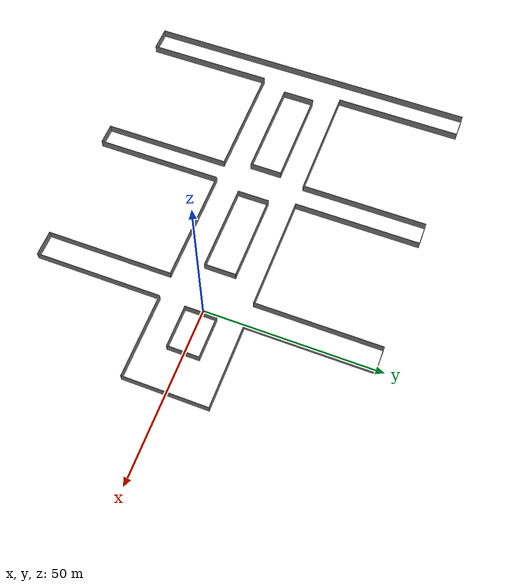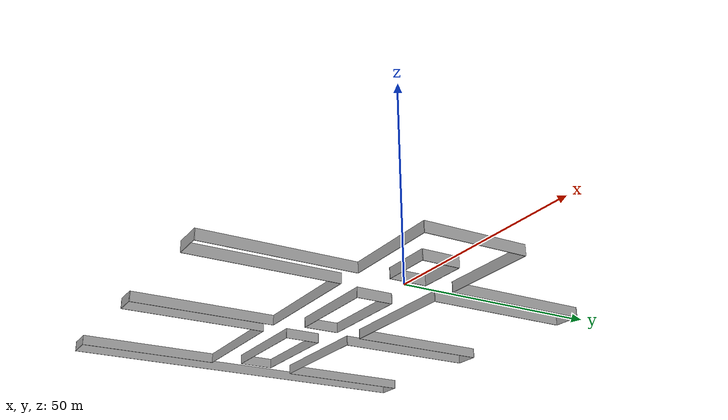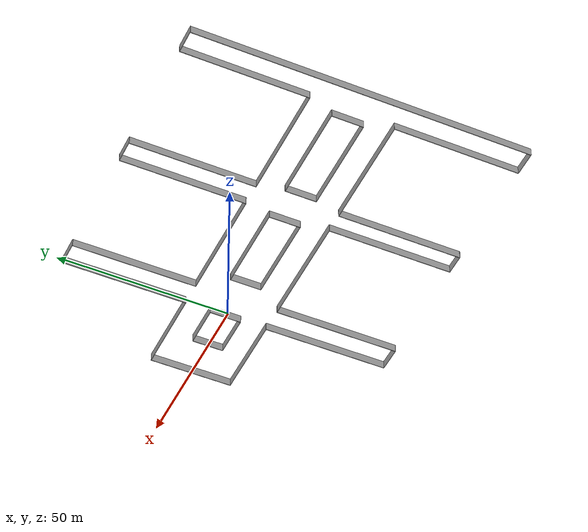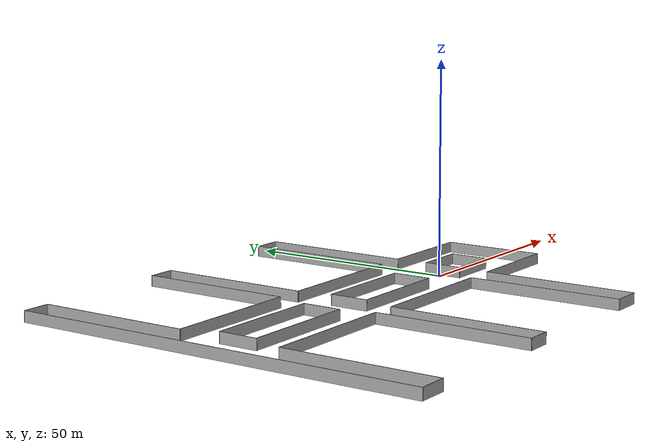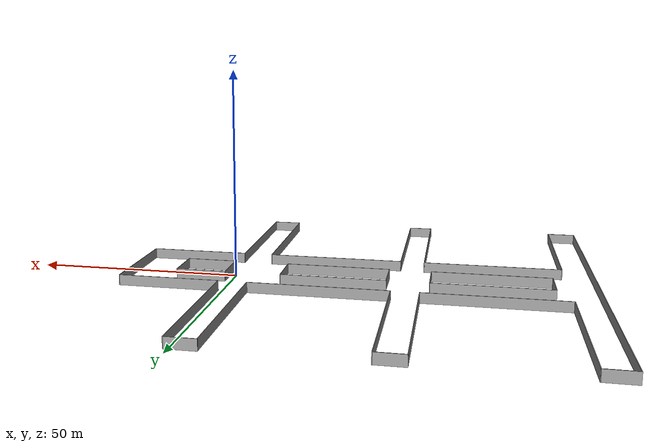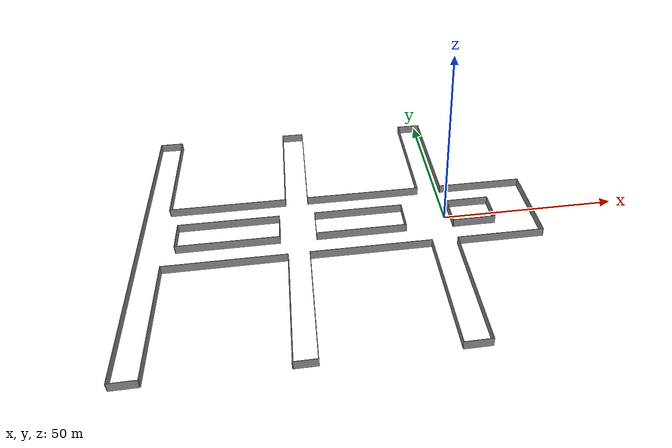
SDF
<?xml version='1.0'?>
<sdf version='1.7'>
  <model name='hospital_wall'>
    <pose>-29.7405 -0.074999 0 0 -0 0</pose>
    <link name='Wall_136'>
      <collision name='Wall_136_Collision'>
        <geometry>
          <box>
            <size>24.15 0.15 2.5</size>
          </box>
        </geometry>
        <pose>0 0 1.25 0 -0 0</pose>
      </collision>
      <visual name='Wall_136_Visual'>
        <pose>0 0 1.25 0 -0 0</pose>
        <geometry>
          <box>
            <size>24.15 0.15 2.5</size>
          </box>
        </geometry>
        <material>
          <script>
            <uri>file://media/materials/scripts/gazebo.material</uri>
            <name>Gazebo/Grey</name>
          </script>
          <ambient>1 1 1 1</ambient>
        </material>
        <meta>
          <layer>0</layer>
        </meta>
      </visual>
      <pose>54.8905 0.074999 0 0 -0 -1.5708</pose>
    </link>
    <link name='Wall_139'>
      <collision name='Wall_139_Collision'>
        <geometry>
          <box>
            <size>12.15 0.15 2.5</size>
          </box>
        </geometry>
        <pose>0 0 1.25 0 -0 0</pose>
      </collision>
      <visual name='Wall_139_Visual'>
        <pose>0 0 1.25 0 -0 0</pose>
        <geometry>
          <box>
            <size>12.15 0.15 2.5</size>
          </box>
        </geometry>
        <material>
          <script>
            <uri>file://media/materials/scripts/gazebo.material</uri>
            <name>Gazebo/Grey</name>
          </script>
          <ambient>1 1 1 1</ambient>
        </material>
        <meta>
          <layer>0</layer>
        </meta>
      </visual>
      <pose>37.2405 4.575 0 0 -0 0</pose>
    </link>
    <link name='Wall_140'>
      <collision name='Wall_140_Collision'>
        <geometry>
          <box>
            <size>9.15 0.15 2.5</size>
          </box>
        </geometry>
        <pose>0 0 1.25 0 -0 0</pose>
      </collision>
      <visual name='Wall_140_Visual'>
        <pose>0 0 1.25 0 -0 0</pose>
        <geometry>
          <box>
            <size>9.15 0.15 2.5</size>
          </box>
        </geometry>
        <material>
          <script>
            <uri>file://media/materials/scripts/gazebo.material</uri>
            <name>Gazebo/Grey</name>
          </script>
          <ambient>1 1 1 1</ambient>
        </material>
        <meta>
          <layer>0</layer>
        </meta>
      </visual>
      <pose>43.2405 0.074999 0 0 -0 -1.5708</pose>
    </link>
    <link name='Wall_141'>
      <collision name='Wall_141_Collision'>
        <geometry>
          <box>
            <size>12.165 0.15 2.5</size>
          </box>
        </geometry>
        <pose>0 0 1.25 0 -0 0</pose>
      </collision>
      <visual name='Wall_141_Visual'>
        <pose>0 0 1.25 0 -0 0</pose>
        <geometry>
          <box>
            <size>12.165 0.15 2.5</size>
          </box>
        </geometry>
        <material>
          <script>
            <uri>file://media/materials/scripts/gazebo.material</uri>
            <name>Gazebo/Grey</name>
          </script>
          <ambient>1 1 1 1</ambient>
        </material>
        <meta>
          <layer>0</layer>
        </meta>
      </visual>
      <pose>37.233 -4.425 0 0 -0 3.14159</pose>
    </link>
    <link name='Wall_142'>
      <collision name='Wall_142_Collision'>
        <geometry>
          <box>
            <size>9.15 0.15 2.5</size>
          </box>
        </geometry>
        <pose>0 0 1.25 0 -0 0</pose>
      </collision>
      <visual name='Wall_142_Visual'>
        <pose>0 0 1.25 0 -0 0</pose>
        <geometry>
          <box>
            <size>9.15 0.15 2.5</size>
          </box>
        </geometry>
        <material>
          <script>
            <uri>file://media/materials/scripts/gazebo.material</uri>
            <name>Gazebo/Grey</name>
          </script>
          <ambient>1 1 1 1</ambient>
        </material>
        <meta>
          <layer>0</layer>
        </meta>
      </visual>
      <pose>31.2255 0.074999 0 0 -0 1.5708</pose>
    </link>
    <link name='Wall_147'>
      <collision name='Wall_147_Collision'>
        <geometry>
          <box>
            <size>36 0.15 2.5</size>
          </box>
        </geometry>
        <pose>0 0 1.25 0 -0 0</pose>
      </collision>
      <visual name='Wall_147_Visual'>
        <pose>0 0 1.25 0 -0 0</pose>
        <geometry>
          <box>
            <size>36 0.15 2.5</size>
          </box>
        </geometry>
        <material>
          <script>
            <uri>file://media/materials/scripts/gazebo.material</uri>
            <name>Gazebo/Grey</name>
          </script>
          <ambient>1 1 1 1</ambient>
        </material>
        <meta>
          <layer>0</layer>
        </meta>
      </visual>
      <pose>23.5905 -29.85 0 0 -0 1.5708</pose>
    </link>
    <link name='Wall_149'>
      <collision name='Wall_149_Collision'>
        <geometry>
          <box>
            <size>36 0.15 2.5</size>
          </box>
        </geometry>
        <pose>0 0 1.25 0 -0 0</pose>
      </collision>
      <visual name='Wall_149_Visual'>
        <pose>0 0 1.25 0 -0 0</pose>
        <geometry>
          <box>
            <size>36 0.15 2.5</size>
          </box>
        </geometry>
        <material>
          <script>
            <uri>file://media/materials/scripts/gazebo.material</uri>
            <name>Gazebo/Grey</name>
          </script>
          <ambient>1 1 1 1</ambient>
        </material>
        <meta>
          <layer>0</layer>
        </meta>
      </visual>
      <pose>30.7405 30 0 0 -0 1.5708</pose>
    </link>
    <link name='Wall_150'>
      <collision name='Wall_150_Collision'>
        <geometry>
          <box>
            <size>7 0.15 2.5</size>
          </box>
        </geometry>
        <pose>0 0 1.25 0 -0 0</pose>
      </collision>
      <visual name='Wall_150_Visual'>
        <pose>0 0 1.25 0 -0 0</pose>
        <geometry>
          <box>
            <size>7 0.15 2.5</size>
          </box>
        </geometry>
        <material>
          <script>
            <uri>file://media/materials/scripts/gazebo.material</uri>
            <name>Gazebo/Grey</name>
          </script>
          <ambient>1 1 1 1</ambient>
        </material>
        <meta>
          <layer>0</layer>
        </meta>
      </visual>
      <pose>27.3155 47.925 0 0 -0 3.14159</pose>
    </link>
    <link name='Wall_151'>
      <collision name='Wall_151_Collision'>
        <geometry>
          <box>
            <size>36 0.15 2.5</size>
          </box>
        </geometry>
        <pose>0 0 1.25 0 -0 0</pose>
      </collision>
      <visual name='Wall_151_Visual'>
        <pose>0 0 1.25 0 -0 0</pose>
        <geometry>
          <box>
            <size>36 0.15 2.5</size>
          </box>
        </geometry>
        <material>
          <script>
            <uri>file://media/materials/scripts/gazebo.material</uri>
            <name>Gazebo/Grey</name>
          </script>
          <ambient>1 1 1 1</ambient>
        </material>
        <meta>
          <layer>0</layer>
        </meta>
      </visual>
      <pose>23.8905 30 0 0 -0 -1.5708</pose>
    </link>
    <link name='Wall_157'>
      <collision name='Wall_157_Collision'>
        <geometry>
          <box>
            <size>36 0.15 2.5</size>
          </box>
        </geometry>
        <pose>0 0 1.25 0 -0 0</pose>
      </collision>
      <visual name='Wall_157_Visual'>
        <pose>0 0 1.25 0 -0 0</pose>
        <geometry>
          <box>
            <size>36 0.15 2.5</size>
          </box>
        </geometry>
        <material>
          <script>
            <uri>file://media/materials/scripts/gazebo.material</uri>
            <name>Gazebo/Grey</name>
          </script>
          <ambient>1 1 1 1</ambient>
        </material>
        <meta>
          <layer>0</layer>
        </meta>
      </visual>
      <pose>-8.9595 30 0 0 -0 1.5708</pose>
    </link>
    <link name='Wall_158'>
      <collision name='Wall_158_Collision'>
        <geometry>
          <box>
            <size>6.596 0.15 2.5</size>
          </box>
        </geometry>
        <pose>0 0 1.25 0 -0 0</pose>
      </collision>
      <visual name='Wall_158_Visual'>
        <pose>0 0 1.25 0 -0 0</pose>
        <geometry>
          <box>
            <size>6.596 0.15 2.5</size>
          </box>
        </geometry>
        <material>
          <script>
            <uri>file://media/materials/scripts/gazebo.material</uri>
            <name>Gazebo/Grey</name>
          </script>
          <ambient>1 1 1 1</ambient>
        </material>
        <meta>
          <layer>0</layer>
        </meta>
      </visual>
      <pose>-12.1825 47.925 0 0 -0 3.14159</pose>
    </link>
    <link name='Wall_159'>
      <collision name='Wall_159_Collision'>
        <geometry>
          <box>
            <size>36 0.15 2.5</size>
          </box>
        </geometry>
        <pose>0 0 1.25 0 -0 0</pose>
      </collision>
      <visual name='Wall_159_Visual'>
        <pose>0 0 1.25 0 -0 0</pose>
        <geometry>
          <box>
            <size>36 0.15 2.5</size>
          </box>
        </geometry>
        <material>
          <script>
            <uri>file://media/materials/scripts/gazebo.material</uri>
            <name>Gazebo/Grey</name>
          </script>
          <ambient>1 1 1 1</ambient>
        </material>
        <meta>
          <layer>0</layer>
        </meta>
      </visual>
      <pose>-15.4055 30 0 0 -0 -1.5708</pose>
    </link>
    <link name='Wall_160'>
      <collision name='Wall_160_Collision'>
        <geometry>
          <box>
            <size>33 0.15 2.5</size>
          </box>
        </geometry>
        <pose>0 0 1.25 0 -0 0</pose>
      </collision>
      <visual name='Wall_160_Visual'>
        <pose>0 0 1.25 0 -0 0</pose>
        <geometry>
          <box>
            <size>33 0.15 2.5</size>
          </box>
        </geometry>
        <material>
          <script>
            <uri>file://media/materials/scripts/gazebo.material</uri>
            <name>Gazebo/Grey</name>
          </script>
          <ambient>1 1 1 1</ambient>
        </material>
        <meta>
          <layer>0</layer>
        </meta>
      </visual>
      <pose>-31.8305 12.075 0 0 -0 3.14159</pose>
    </link>
    <link name='Wall_161'>
      <collision name='Wall_161_Collision'>
        <geometry>
          <box>
            <size>36 0.15 2.5</size>
          </box>
        </geometry>
        <pose>0 0 1.25 0 -0 0</pose>
      </collision>
      <visual name='Wall_161_Visual'>
        <pose>0 0 1.25 0 -0 0</pose>
        <geometry>
          <box>
            <size>36 0.15 2.5</size>
          </box>
        </geometry>
        <material>
          <script>
            <uri>file://media/materials/scripts/gazebo.material</uri>
            <name>Gazebo/Grey</name>
          </script>
          <ambient>1 1 1 1</ambient>
        </material>
        <meta>
          <layer>0</layer>
        </meta>
      </visual>
      <pose>-48.2555 30 0 0 -0 1.5708</pose>
    </link>
    <link name='Wall_162'>
      <collision name='Wall_162_Collision'>
        <geometry>
          <box>
            <size>6.785 0.15 2.5</size>
          </box>
        </geometry>
        <pose>0 0 1.25 0 -0 0</pose>
      </collision>
      <visual name='Wall_162_Visual'>
        <pose>0 0 1.25 0 -0 0</pose>
        <geometry>
          <box>
            <size>6.785 0.15 2.5</size>
          </box>
        </geometry>
        <material>
          <script>
            <uri>file://media/materials/scripts/gazebo.material</uri>
            <name>Gazebo/Grey</name>
          </script>
          <ambient>1 1 1 1</ambient>
        </material>
        <meta>
          <layer>0</layer>
        </meta>
      </visual>
      <pose>-51.573 47.925 0 0 -0 3.14159</pose>
    </link>
    <link name='Wall_163'>
      <collision name='Wall_163_Collision'>
        <geometry>
          <box>
            <size>95.85 0.15 2.5</size>
          </box>
        </geometry>
        <pose>0 0 1.25 0 -0 0</pose>
      </collision>
      <visual name='Wall_163_Visual'>
        <pose>0 0 1.25 0 -0 0</pose>
        <geometry>
          <box>
            <size>95.85 0.15 2.5</size>
          </box>
        </geometry>
        <material>
          <script>
            <uri>file://media/materials/scripts/gazebo.material</uri>
            <name>Gazebo/Grey</name>
          </script>
          <ambient>1 1 1 1</ambient>
        </material>
        <meta>
          <layer>0</layer>
        </meta>
      </visual>
      <pose>-54.8905 0.074999 0 0 -0 -1.5708</pose>
    </link>
    <link name='Wall_164'>
      <collision name='Wall_164_Collision'>
        <geometry>
          <box>
            <size>7 0.15 2.5</size>
          </box>
        </geometry>
        <pose>0 0 1.25 0 -0 0</pose>
      </collision>
      <visual name='Wall_164_Visual'>
        <pose>0 0 1.25 0 -0 0</pose>
        <geometry>
          <box>
            <size>7 0.15 2.5</size>
          </box>
        </geometry>
        <material>
          <script>
            <uri>file://media/materials/scripts/gazebo.material</uri>
            <name>Gazebo/Grey</name>
          </script>
          <ambient>1 1 1 1</ambient>
        </material>
        <meta>
          <layer>0</layer>
        </meta>
      </visual>
      <pose>-51.4655 -47.775 0 0 -0 0</pose>
    </link>
    <link name='Wall_165'>
      <collision name='Wall_165_Collision'>
        <geometry>
          <box>
            <size>36 0.15 2.5</size>
          </box>
        </geometry>
        <pose>0 0 1.25 0 -0 0</pose>
      </collision>
      <visual name='Wall_165_Visual'>
        <pose>0 0 1.25 0 -0 0</pose>
        <geometry>
          <box>
            <size>36 0.15 2.5</size>
          </box>
        </geometry>
        <material>
          <script>
            <uri>file://media/materials/scripts/gazebo.material</uri>
            <name>Gazebo/Grey</name>
          </script>
          <ambient>1 1 1 1</ambient>
        </material>
        <meta>
          <layer>0</layer>
        </meta>
      </visual>
      <pose>-48.0405 -29.85 0 0 -0 1.5708</pose>
    </link>
    <link name='Wall_166'>
      <collision name='Wall_166_Collision'>
        <geometry>
          <box>
            <size>33 0.15 2.5</size>
          </box>
        </geometry>
        <pose>0 0 1.25 0 -0 0</pose>
      </collision>
      <visual name='Wall_166_Visual'>
        <pose>0 0 1.25 0 -0 0</pose>
        <geometry>
          <box>
            <size>33 0.15 2.5</size>
          </box>
        </geometry>
        <material>
          <script>
            <uri>file://media/materials/scripts/gazebo.material</uri>
            <name>Gazebo/Grey</name>
          </script>
          <ambient>1 1 1 1</ambient>
        </material>
        <meta>
          <layer>0</layer>
        </meta>
      </visual>
      <pose>-31.6155 -11.925 0 0 -0 0</pose>
    </link>
    <link name='Wall_170'>
      <collision name='Wall_170_Collision'>
        <geometry>
          <box>
            <size>33 0.15 2.5</size>
          </box>
        </geometry>
        <pose>0 0 1.25 0 -0 0</pose>
      </collision>
      <visual name='Wall_170_Visual'>
        <pose>0 0 1.25 0 -0 0</pose>
        <geometry>
          <box>
            <size>33 0.15 2.5</size>
          </box>
        </geometry>
        <material>
          <script>
            <uri>file://media/materials/scripts/gazebo.material</uri>
            <name>Gazebo/Grey</name>
          </script>
          <ambient>1 1 1 1</ambient>
        </material>
        <meta>
          <layer>0</layer>
        </meta>
      </visual>
      <pose>7.4655 12.075 0 0 -0 3.14159</pose>
    </link>
    <link name='Wall_172'>
      <collision name='Wall_172_Collision'>
        <geometry>
          <box>
            <size>33 0.15 2.5</size>
          </box>
        </geometry>
        <pose>0 0 1.25 0 -0 0</pose>
      </collision>
      <visual name='Wall_172_Visual'>
        <pose>0 0 1.25 0 -0 0</pose>
        <geometry>
          <box>
            <size>33 0.15 2.5</size>
          </box>
        </geometry>
        <material>
          <script>
            <uri>file://media/materials/scripts/gazebo.material</uri>
            <name>Gazebo/Grey</name>
          </script>
          <ambient>1 1 1 1</ambient>
        </material>
        <meta>
          <layer>0</layer>
        </meta>
      </visual>
      <pose>7.0155 -11.925 0 0 -0 0</pose>
    </link>
    <link name='Wall_174'>
      <collision name='Wall_174_Collision'>
        <geometry>
          <box>
            <size>24 0.15 2.5</size>
          </box>
        </geometry>
        <pose>0 0 1.25 0 -0 0</pose>
      </collision>
      <visual name='Wall_174_Visual'>
        <pose>0 0 1.25 0 -0 0</pose>
        <geometry>
          <box>
            <size>24 0.15 2.5</size>
          </box>
        </geometry>
        <material>
          <script>
            <uri>file://media/materials/scripts/gazebo.material</uri>
            <name>Gazebo/Grey</name>
          </script>
          <ambient>1 1 1 1</ambient>
        </material>
        <meta>
          <layer>0</layer>
        </meta>
      </visual>
      <pose>42.8155 -11.925 0 0 -0 0</pose>
    </link>
    <link name='Wall_176'>
      <collision name='Wall_176_Collision'>
        <geometry>
          <box>
            <size>9.15 0.15 2.5</size>
          </box>
        </geometry>
        <pose>0 0 1.25 0 -0 0</pose>
      </collision>
      <visual name='Wall_176_Visual'>
        <pose>0 0 1.25 0 -0 0</pose>
        <geometry>
          <box>
            <size>9.15 0.15 2.5</size>
          </box>
        </geometry>
        <material>
          <script>
            <uri>file://media/materials/scripts/gazebo.material</uri>
            <name>Gazebo/Grey</name>
          </script>
          <ambient>1 1 1 1</ambient>
        </material>
        <meta>
          <layer>0</layer>
        </meta>
      </visual>
      <pose>-7.2595 0.074999 0 0 -0 -1.5708</pose>
    </link>
    <link name='Wall_177'>
      <collision name='Wall_177_Collision'>
        <geometry>
          <box>
            <size>25.15 0.15 2.5</size>
          </box>
        </geometry>
        <pose>0 0 1.25 0 -0 0</pose>
      </collision>
      <visual name='Wall_177_Visual'>
        <pose>0 0 1.25 0 -0 0</pose>
        <geometry>
          <box>
            <size>25.15 0.15 2.5</size>
          </box>
        </geometry>
        <material>
          <script>
            <uri>file://media/materials/scripts/gazebo.material</uri>
            <name>Gazebo/Grey</name>
          </script>
          <ambient>1 1 1 1</ambient>
        </material>
        <meta>
          <layer>0</layer>
        </meta>
      </visual>
      <pose>5.2405 -4.425 0 0 -0 0</pose>
    </link>
    <link name='Wall_178'>
      <collision name='Wall_178_Collision'>
        <geometry>
          <box>
            <size>9.15 0.15 2.5</size>
          </box>
        </geometry>
        <pose>0 0 1.25 0 -0 0</pose>
      </collision>
      <visual name='Wall_178_Visual'>
        <pose>0 0 1.25 0 -0 0</pose>
        <geometry>
          <box>
            <size>9.15 0.15 2.5</size>
          </box>
        </geometry>
        <material>
          <script>
            <uri>file://media/materials/scripts/gazebo.material</uri>
            <name>Gazebo/Grey</name>
          </script>
          <ambient>1 1 1 1</ambient>
        </material>
        <meta>
          <layer>0</layer>
        </meta>
      </visual>
      <pose>17.7405 0.074999 0 0 -0 1.5708</pose>
    </link>
    <link name='Wall_179'>
      <collision name='Wall_179_Collision'>
        <geometry>
          <box>
            <size>25.15 0.15 2.5</size>
          </box>
        </geometry>
        <pose>0 0 1.25 0 -0 0</pose>
      </collision>
      <visual name='Wall_179_Visual'>
        <pose>0 0 1.25 0 -0 0</pose>
        <geometry>
          <box>
            <size>25.15 0.15 2.5</size>
          </box>
        </geometry>
        <material>
          <script>
            <uri>file://media/materials/scripts/gazebo.material</uri>
            <name>Gazebo/Grey</name>
          </script>
          <ambient>1 1 1 1</ambient>
        </material>
        <meta>
          <layer>0</layer>
        </meta>
      </visual>
      <pose>5.2405 4.575 0 0 -0 3.14159</pose>
    </link>
    <link name='Wall_181'>
      <collision name='Wall_181_Collision'>
        <geometry>
          <box>
            <size>36 0.15 2.5</size>
          </box>
        </geometry>
        <pose>0 0 1.25 0 -0 0</pose>
      </collision>
      <visual name='Wall_181_Visual'>
        <pose>0 0 1.25 0 -0 0</pose>
        <geometry>
          <box>
            <size>36 0.15 2.5</size>
          </box>
        </geometry>
        <material>
          <script>
            <uri>file://media/materials/scripts/gazebo.material</uri>
            <name>Gazebo/Grey</name>
          </script>
          <ambient>1 1 1 1</ambient>
        </material>
        <meta>
          <layer>0</layer>
        </meta>
      </visual>
      <pose>-15.1905 -29.85 0 0 -0 -1.5708</pose>
    </link>
    <link name='Wall_184'>
      <collision name='Wall_184_Collision'>
        <geometry>
          <box>
            <size>24 0.15 2.5</size>
          </box>
        </geometry>
        <pose>0 0 1.25 0 -0 0</pose>
      </collision>
      <visual name='Wall_184_Visual'>
        <pose>0 0 1.25 0 -0 0</pose>
        <geometry>
          <box>
            <size>24 0.15 2.5</size>
          </box>
        </geometry>
        <material>
          <script>
            <uri>file://media/materials/scripts/gazebo.material</uri>
            <name>Gazebo/Grey</name>
          </script>
          <ambient>1 1 1 1</ambient>
        </material>
        <meta>
          <layer>0</layer>
        </meta>
      </visual>
      <pose>42.8155 12.075 0 0 -0 0</pose>
    </link>
    <link name='Wall_186'>
      <collision name='Wall_186_Collision'>
        <geometry>
          <box>
            <size>36 0.15 2.5</size>
          </box>
        </geometry>
        <pose>0 0 1.25 0 -0 0</pose>
      </collision>
      <visual name='Wall_186_Visual'>
        <pose>0 0 1.25 0 -0 0</pose>
        <geometry>
          <box>
            <size>36 0.15 2.5</size>
          </box>
        </geometry>
        <material>
          <script>
            <uri>file://media/materials/scripts/gazebo.material</uri>
            <name>Gazebo/Grey</name>
          </script>
          <ambient>1 1 1 1</ambient>
        </material>
        <meta>
          <layer>0</layer>
        </meta>
      </visual>
      <pose>30.7405 -29.85 0 0 -0 -1.5708</pose>
    </link>
    <link name='Wall_188'>
      <collision name='Wall_188_Collision'>
        <geometry>
          <box>
            <size>7.3 0.15 2.5</size>
          </box>
        </geometry>
        <pose>0 0 1.25 0 -0 0</pose>
      </collision>
      <visual name='Wall_188_Visual'>
        <pose>0 0 1.25 0 -0 0</pose>
        <geometry>
          <box>
            <size>7.3 0.15 2.5</size>
          </box>
        </geometry>
        <material>
          <script>
            <uri>file://media/materials/scripts/gazebo.material</uri>
            <name>Gazebo/Grey</name>
          </script>
          <ambient>1 1 1 1</ambient>
        </material>
        <meta>
          <layer>0</layer>
        </meta>
      </visual>
      <pose>27.1655 -47.925 0 0 -0 3.14159</pose>
    </link>
    <link name='Wall_190'>
      <collision name='Wall_190_Collision'>
        <geometry>
          <box>
            <size>36 0.15 2.5</size>
          </box>
        </geometry>
        <pose>0 0 1.25 0 -0 0</pose>
      </collision>
      <visual name='Wall_190_Visual'>
        <pose>0 0 1.25 0 -0 0</pose>
        <geometry>
          <box>
            <size>36 0.15 2.5</size>
          </box>
        </geometry>
        <material>
          <script>
            <uri>file://media/materials/scripts/gazebo.material</uri>
            <name>Gazebo/Grey</name>
          </script>
          <ambient>1 1 1 1</ambient>
        </material>
        <meta>
          <layer>0</layer>
        </meta>
      </visual>
      <pose>-9.4095 -29.85 0 0 -0 -1.5708</pose>
    </link>
    <link name='Wall_191'>
      <collision name='Wall_191_Collision'>
        <geometry>
          <box>
            <size>6 0.15 2.5</size>
          </box>
        </geometry>
        <pose>0 0 1.25 0 -0 0</pose>
      </collision>
      <visual name='Wall_191_Visual'>
        <pose>0 0 1.25 0 -0 0</pose>
        <geometry>
          <box>
            <size>6 0.15 2.5</size>
          </box>
        </geometry>
        <material>
          <script>
            <uri>file://media/materials/scripts/gazebo.material</uri>
            <name>Gazebo/Grey</name>
          </script>
          <ambient>1 1 1 1</ambient>
        </material>
        <meta>
          <layer>0</layer>
        </meta>
      </visual>
      <pose>-12.3345 -47.775 0 0 -0 3.14159</pose>
    </link>
    <link name='Wall_193'>
      <collision name='Wall_193_Collision'>
        <geometry>
          <box>
            <size>9.15 0.15 2.5</size>
          </box>
        </geometry>
        <pose>0 0 1.25 0 -0 0</pose>
      </collision>
      <visual name='Wall_193_Visual'>
        <pose>0 0 1.25 0 -0 0</pose>
        <geometry>
          <box>
            <size>9.15 0.15 2.5</size>
          </box>
        </geometry>
        <material>
          <script>
            <uri>file://media/materials/scripts/gazebo.material</uri>
            <name>Gazebo/Grey</name>
          </script>
          <ambient>1 1 1 1</ambient>
        </material>
        <meta>
          <layer>0</layer>
        </meta>
      </visual>
      <pose>-45.2595 0.074999 0 0 -0 -1.5708</pose>
    </link>
    <link name='Wall_194'>
      <collision name='Wall_194_Collision'>
        <geometry>
          <box>
            <size>28.15 0.15 2.5</size>
          </box>
        </geometry>
        <pose>0 0 1.25 0 -0 0</pose>
      </collision>
      <visual name='Wall_194_Visual'>
        <pose>0 0 1.25 0 -0 0</pose>
        <geometry>
          <box>
            <size>28.15 0.15 2.5</size>
          </box>
        </geometry>
        <material>
          <script>
            <uri>file://media/materials/scripts/gazebo.material</uri>
            <name>Gazebo/Grey</name>
          </script>
          <ambient>1 1 1 1</ambient>
        </material>
        <meta>
          <layer>0</layer>
        </meta>
      </visual>
      <pose>-31.2595 -4.425 0 0 -0 0</pose>
    </link>
    <link name='Wall_195'>
      <collision name='Wall_195_Collision'>
        <geometry>
          <box>
            <size>9.15 0.15 2.5</size>
          </box>
        </geometry>
        <pose>0 0 1.25 0 -0 0</pose>
      </collision>
      <visual name='Wall_195_Visual'>
        <pose>0 0 1.25 0 -0 0</pose>
        <geometry>
          <box>
            <size>9.15 0.15 2.5</size>
          </box>
        </geometry>
        <material>
          <script>
            <uri>file://media/materials/scripts/gazebo.material</uri>
            <name>Gazebo/Grey</name>
          </script>
          <ambient>1 1 1 1</ambient>
        </material>
        <meta>
          <layer>0</layer>
        </meta>
      </visual>
      <pose>-17.2595 0.074999 0 0 -0 1.5708</pose>
    </link>
    <link name='Wall_196'>
      <collision name='Wall_196_Collision'>
        <geometry>
          <box>
            <size>28.15 0.15 2.5</size>
          </box>
        </geometry>
        <pose>0 0 1.25 0 -0 0</pose>
      </collision>
      <visual name='Wall_196_Visual'>
        <pose>0 0 1.25 0 -0 0</pose>
        <geometry>
          <box>
            <size>28.15 0.15 2.5</size>
          </box>
        </geometry>
        <material>
          <script>
            <uri>file://media/materials/scripts/gazebo.material</uri>
            <name>Gazebo/Grey</name>
          </script>
          <ambient>1 1 1 1</ambient>
        </material>
        <meta>
          <layer>0</layer>
        </meta>
      </visual>
      <pose>-31.2595 4.575 0 0 -0 3.14159</pose>
    </link>
    <static>1</static>
  </model>
</sdf>
